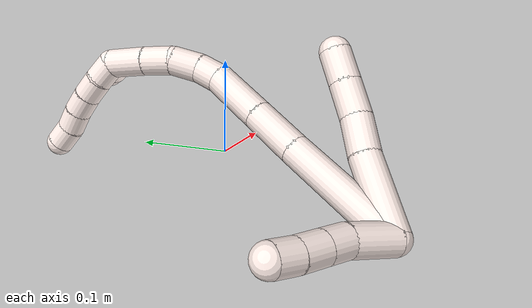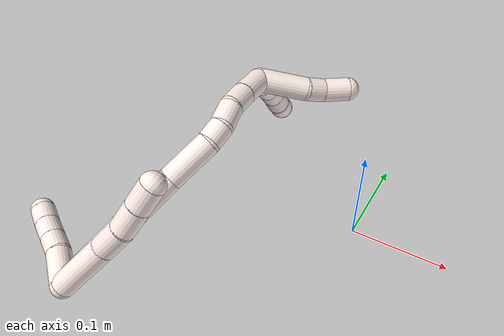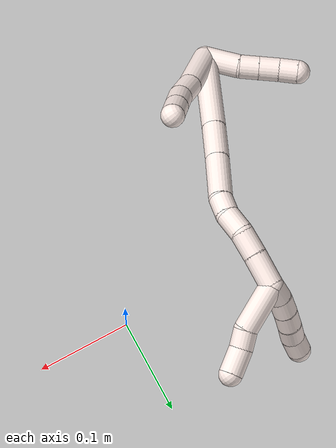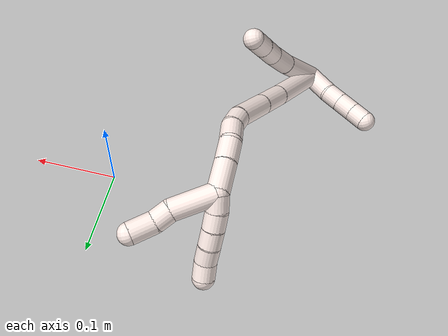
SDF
<sdf version="1.7">
 <world name="default">
  <model name="11">
   <static>0</static>
   <link name="11">
    <collision name="collision-cylinder-e_1_2_8">
     <pose>0.01867 0.025299 -0.002731 -1.67833 0.63299 -0.69953</pose>
     <geometry><cylinder><radius>0.0125</radius><length>0.063121</length></cylinder></geometry>
     <surface>
      <friction><ode><mu>1.16</mu><mu2>1.16</mu2><slip1>0</slip1><slip2>0</slip2></ode></friction>
      <contact><ode><kp>1e+06</kp><kd>1</kd><max_vel>0</max_vel><min_depth>0.001</min_depth></ode></contact>
     </surface>
    </collision>
    <visual name="visual-cylinder-e_1_2_8">
     <pose>0.01867 0.025299 -0.002731 -1.67833 0.63299 -0.69953</pose>
     <geometry><cylinder><radius>0.0125</radius><length>0.063121</length></cylinder></geometry>
     <material><ambient>1 0.933333 0.909804 1</ambient></material>
    </visual>
    <collision name="collision-cylinder-e_2_8_9">
     <pose>0.047883 0.062098 -0.006578 -1.66755 0.739703 -0.807365</pose>
     <geometry><cylinder><radius>0.0125</radius><length>0.031283</length></cylinder></geometry>
     <surface>
      <friction><ode><mu>1.16</mu><mu2>1.16</mu2><slip1>0</slip1><slip2>0</slip2></ode></friction>
      <contact><ode><kp>1e+06</kp><kd>1</kd><max_vel>0</max_vel><min_depth>0.001</min_depth></ode></contact>
     </surface>
    </collision>
    <visual name="visual-cylinder-e_2_8_9">
     <pose>0.047883 0.062098 -0.006578 -1.66755 0.739703 -0.807365</pose>
     <geometry><cylinder><radius>0.0125</radius><length>0.031283</length></cylinder></geometry>
     <material><ambient>1 0.933333 0.909804 1</ambient></material>
    </visual>
    <collision name="collision-cylinder-e_3_9_10">
     <pose>0.067216 0.084904 -0.006305 -1.44852 0.657171 -0.585871</pose>
     <geometry><cylinder><radius>0.0125</radius><length>0.028776</length></cylinder></geometry>
     <surface>
      <friction><ode><mu>1.16</mu><mu2>1.16</mu2><slip1>0</slip1><slip2>0</slip2></ode></friction>
      <contact><ode><kp>1e+06</kp><kd>1</kd><max_vel>0</max_vel><min_depth>0.001</min_depth></ode></contact>
     </surface>
    </collision>
    <visual name="visual-cylinder-e_3_9_10">
     <pose>0.067216 0.084904 -0.006305 -1.44852 0.657171 -0.585871</pose>
     <geometry><cylinder><radius>0.0125</radius><length>0.028776</length></cylinder></geometry>
     <material><ambient>1 0.933333 0.909804 1</ambient></material>
    </visual>
    <collision name="collision-cylinder-e_4_10_6">
     <pose>0.084146 0.106784 -0.003591 -1.44616 0.652389 -0.580238</pose>
     <geometry><cylinder><radius>0.0125</radius><length>0.02682</length></cylinder></geometry>
     <surface>
      <friction><ode><mu>1.16</mu><mu2>1.16</mu2><slip1>0</slip1><slip2>0</slip2></ode></friction>
      <contact><ode><kp>1e+06</kp><kd>1</kd><max_vel>0</max_vel><min_depth>0.001</min_depth></ode></contact>
     </surface>
    </collision>
    <visual name="visual-cylinder-e_4_10_6">
     <pose>0.084146 0.106784 -0.003591 -1.44616 0.652389 -0.580238</pose>
     <geometry><cylinder><radius>0.0125</radius><length>0.02682</length></cylinder></geometry>
     <material><ambient>1 0.933333 0.909804 1</ambient></material>
    </visual>
    <collision name="collision-cylinder-e_1_2_11">
     <pose>-0.010839 0.009652 0.012189 -0.669732 -0.60879 0.217771</pose>
     <geometry><cylinder><radius>0.0125</radius><length>0.037906</length></cylinder></geometry>
     <surface>
      <friction><ode><mu>1.16</mu><mu2>1.16</mu2><slip1>0</slip1><slip2>0</slip2></ode></friction>
      <contact><ode><kp>1e+06</kp><kd>1</kd><max_vel>0</max_vel><min_depth>0.001</min_depth></ode></contact>
     </surface>
    </collision>
    <visual name="visual-cylinder-e_1_2_11">
     <pose>-0.010839 0.009652 0.012189 -0.669732 -0.60879 0.217771</pose>
     <geometry><cylinder><radius>0.0125</radius><length>0.037906</length></cylinder></geometry>
     <material><ambient>1 0.933333 0.909804 1</ambient></material>
    </visual>
    <collision name="collision-cylinder-e_2_11_12">
     <pose>-0.028416 0.022436 0.031424 -0.418439 -0.718256 0.159082</pose>
     <geometry><cylinder><radius>0.0125</radius><length>0.020481</length></cylinder></geometry>
     <surface>
      <friction><ode><mu>1.16</mu><mu2>1.16</mu2><slip1>0</slip1><slip2>0</slip2></ode></friction>
      <contact><ode><kp>1e+06</kp><kd>1</kd><max_vel>0</max_vel><min_depth>0.001</min_depth></ode></contact>
     </surface>
    </collision>
    <visual name="visual-cylinder-e_2_11_12">
     <pose>-0.028416 0.022436 0.031424 -0.418439 -0.718256 0.159082</pose>
     <geometry><cylinder><radius>0.0125</radius><length>0.020481</length></cylinder></geometry>
     <material><ambient>1 0.933333 0.909804 1</ambient></material>
    </visual>
    <collision name="collision-cylinder-e_3_12_13">
     <pose>-0.042237 0.028837 0.045861 -0.416272 -0.719568 0.158551</pose>
     <geometry><cylinder><radius>0.0125</radius><length>0.021492</length></cylinder></geometry>
     <surface>
      <friction><ode><mu>1.16</mu><mu2>1.16</mu2><slip1>0</slip1><slip2>0</slip2></ode></friction>
      <contact><ode><kp>1e+06</kp><kd>1</kd><max_vel>0</max_vel><min_depth>0.001</min_depth></ode></contact>
     </surface>
    </collision>
    <visual name="visual-cylinder-e_3_12_13">
     <pose>-0.042237 0.028837 0.045861 -0.416272 -0.719568 0.158551</pose>
     <geometry><cylinder><radius>0.0125</radius><length>0.021492</length></cylinder></geometry>
     <material><ambient>1 0.933333 0.909804 1</ambient></material>
    </visual>
    <collision name="collision-cylinder-e_4_13_5">
     <pose>-0.055509 0.03585 0.060245 -0.491729 -0.662645 0.172222</pose>
     <geometry><cylinder><radius>0.0125</radius><length>0.020122</length></cylinder></geometry>
     <surface>
      <friction><ode><mu>1.16</mu><mu2>1.16</mu2><slip1>0</slip1><slip2>0</slip2></ode></friction>
      <contact><ode><kp>1e+06</kp><kd>1</kd><max_vel>0</max_vel><min_depth>0.001</min_depth></ode></contact>
     </surface>
    </collision>
    <visual name="visual-cylinder-e_4_13_5">
     <pose>-0.055509 0.03585 0.060245 -0.491729 -0.662645 0.172222</pose>
     <geometry><cylinder><radius>0.0125</radius><length>0.020122</length></cylinder></geometry>
     <material><ambient>1 0.933333 0.909804 1</ambient></material>
    </visual>
    <collision name="collision-cylinder-e_1_2_14">
     <pose>0.006488 0.048244 -0.003581 -1.6449 0.133323 -0.143553</pose>
     <geometry><cylinder><radius>0.0125</radius><length>0.09762</length></cylinder></geometry>
     <surface>
      <friction><ode><mu>1.16</mu><mu2>1.16</mu2><slip1>0</slip1><slip2>0</slip2></ode></friction>
      <contact><ode><kp>1e+06</kp><kd>1</kd><max_vel>0</max_vel><min_depth>0.001</min_depth></ode></contact>
     </surface>
    </collision>
    <visual name="visual-cylinder-e_1_2_14">
     <pose>0.006488 0.048244 -0.003581 -1.6449 0.133323 -0.143553</pose>
     <geometry><cylinder><radius>0.0125</radius><length>0.09762</length></cylinder></geometry>
     <material><ambient>1 0.933333 0.909804 1</ambient></material>
    </visual>
    <collision name="collision-cylinder-e_2_14_15">
     <pose>0.016298 0.11779 -0.008809 -1.64791 0.154208 -0.166528</pose>
     <geometry><cylinder><radius>0.0125</radius><length>0.043243</length></cylinder></geometry>
     <surface>
      <friction><ode><mu>1.16</mu><mu2>1.16</mu2><slip1>0</slip1><slip2>0</slip2></ode></friction>
      <contact><ode><kp>1e+06</kp><kd>1</kd><max_vel>0</max_vel><min_depth>0.001</min_depth></ode></contact>
     </surface>
    </collision>
    <visual name="visual-cylinder-e_2_14_15">
     <pose>0.016298 0.11779 -0.008809 -1.64791 0.154208 -0.166528</pose>
     <geometry><cylinder><radius>0.0125</radius><length>0.043243</length></cylinder></geometry>
     <material><ambient>1 0.933333 0.909804 1</ambient></material>
    </visual>
    <collision name="collision-cylinder-e_3_15_16">
     <pose>0.023573 0.16442 -0.012895 -1.66685 0.154162 -0.169658</pose>
     <geometry><cylinder><radius>0.0125</radius><length>0.051502</length></cylinder></geometry>
     <surface>
      <friction><ode><mu>1.16</mu><mu2>1.16</mu2><slip1>0</slip1><slip2>0</slip2></ode></friction>
      <contact><ode><kp>1e+06</kp><kd>1</kd><max_vel>0</max_vel><min_depth>0.001</min_depth></ode></contact>
     </surface>
    </collision>
    <visual name="visual-cylinder-e_3_15_16">
     <pose>0.023573 0.16442 -0.012895 -1.66685 0.154162 -0.169658</pose>
     <geometry><cylinder><radius>0.0125</radius><length>0.051502</length></cylinder></geometry>
     <material><ambient>1 0.933333 0.909804 1</ambient></material>
    </visual>
    <collision name="collision-cylinder-e_4_16_17">
     <pose>0.026598 0.200246 -0.014913 -1.53056 -0.088191 0.084716</pose>
     <geometry><cylinder><radius>0.0125</radius><length>0.021093</length></cylinder></geometry>
     <surface>
      <friction><ode><mu>1.16</mu><mu2>1.16</mu2><slip1>0</slip1><slip2>0</slip2></ode></friction>
      <contact><ode><kp>1e+06</kp><kd>1</kd><max_vel>0</max_vel><min_depth>0.001</min_depth></ode></contact>
     </surface>
    </collision>
    <visual name="visual-cylinder-e_4_16_17">
     <pose>0.026598 0.200246 -0.014913 -1.53056 -0.088191 0.084716</pose>
     <geometry><cylinder><radius>0.0125</radius><length>0.021093</length></cylinder></geometry>
     <material><ambient>1 0.933333 0.909804 1</ambient></material>
    </visual>
    <collision name="collision-cylinder-e_5_17_18">
     <pose>0.021524 0.222281 -0.011954 -1.35444 -0.33741 0.272213</pose>
     <geometry><cylinder><radius>0.0125</radius><length>0.02504</length></cylinder></geometry>
     <surface>
      <friction><ode><mu>1.16</mu><mu2>1.16</mu2><slip1>0</slip1><slip2>0</slip2></ode></friction>
      <contact><ode><kp>1e+06</kp><kd>1</kd><max_vel>0</max_vel><min_depth>0.001</min_depth></ode></contact>
     </surface>
    </collision>
    <visual name="visual-cylinder-e_5_17_18">
     <pose>0.021524 0.222281 -0.011954 -1.35444 -0.33741 0.272213</pose>
     <geometry><cylinder><radius>0.0125</radius><length>0.02504</length></cylinder></geometry>
     <material><ambient>1 0.933333 0.909804 1</ambient></material>
    </visual>
    <collision name="collision-cylinder-e_6_18_19">
     <pose>0.01055 0.245006 -0.009902 -1.61403 -0.54772 0.570659</pose>
     <geometry><cylinder><radius>0.0125</radius><length>0.026231</length></cylinder></geometry>
     <surface>
      <friction><ode><mu>1.16</mu><mu2>1.16</mu2><slip1>0</slip1><slip2>0</slip2></ode></friction>
      <contact><ode><kp>1e+06</kp><kd>1</kd><max_vel>0</max_vel><min_depth>0.001</min_depth></ode></contact>
     </surface>
    </collision>
    <visual name="visual-cylinder-e_6_18_19">
     <pose>0.01055 0.245006 -0.009902 -1.61403 -0.54772 0.570659</pose>
     <geometry><cylinder><radius>0.0125</radius><length>0.026231</length></cylinder></geometry>
     <material><ambient>1 0.933333 0.909804 1</ambient></material>
    </visual>
    <collision name="collision-cylinder-e_7_19_1">
     <pose>-0.005844 0.270932 -0.011892 -1.6726 -0.573214 0.630929</pose>
     <geometry><cylinder><radius>0.0125</radius><length>0.03527</length></cylinder></geometry>
     <surface>
      <friction><ode><mu>1.16</mu><mu2>1.16</mu2><slip1>0</slip1><slip2>0</slip2></ode></friction>
      <contact><ode><kp>1e+06</kp><kd>1</kd><max_vel>0</max_vel><min_depth>0.001</min_depth></ode></contact>
     </surface>
    </collision>
    <visual name="visual-cylinder-e_7_19_1">
     <pose>-0.005844 0.270932 -0.011892 -1.6726 -0.573214 0.630929</pose>
     <geometry><cylinder><radius>0.0125</radius><length>0.03527</length></cylinder></geometry>
     <material><ambient>1 0.933333 0.909804 1</ambient></material>
    </visual>
    <collision name="collision-cylinder-e_1_1_20">
     <pose>-0.015201 0.298998 -0.035369 -2.59641 0.008075 -0.028885</pose>
     <geometry><cylinder><radius>0.0125</radius><length>0.051396</length></cylinder></geometry>
     <surface>
      <friction><ode><mu>1.16</mu><mu2>1.16</mu2><slip1>0</slip1><slip2>0</slip2></ode></friction>
      <contact><ode><kp>1e+06</kp><kd>1</kd><max_vel>0</max_vel><min_depth>0.001</min_depth></ode></contact>
     </surface>
    </collision>
    <visual name="visual-cylinder-e_1_1_20">
     <pose>-0.015201 0.298998 -0.035369 -2.59641 0.008075 -0.028885</pose>
     <geometry><cylinder><radius>0.0125</radius><length>0.051396</length></cylinder></geometry>
     <material><ambient>1 0.933333 0.909804 1</ambient></material>
    </visual>
    <collision name="collision-cylinder-e_2_20_21">
     <pose>-0.01733 0.318917 -0.06474 -2.41369 -0.231574 0.592678</pose>
     <geometry><cylinder><radius>0.0125</radius><length>0.020364</length></cylinder></geometry>
     <surface>
      <friction><ode><mu>1.16</mu><mu2>1.16</mu2><slip1>0</slip1><slip2>0</slip2></ode></friction>
      <contact><ode><kp>1e+06</kp><kd>1</kd><max_vel>0</max_vel><min_depth>0.001</min_depth></ode></contact>
     </surface>
    </collision>
    <visual name="visual-cylinder-e_2_20_21">
     <pose>-0.01733 0.318917 -0.06474 -2.41369 -0.231574 0.592678</pose>
     <geometry><cylinder><radius>0.0125</radius><length>0.020364</length></cylinder></geometry>
     <material><ambient>1 0.933333 0.909804 1</ambient></material>
    </visual>
    <collision name="collision-cylinder-e_3_21_4">
     <pose>-0.019293 0.335458 -0.082153 -2.35954 0.026463 -0.064172</pose>
     <geometry><cylinder><radius>0.0125</radius><length>0.02824</length></cylinder></geometry>
     <surface>
      <friction><ode><mu>1.16</mu><mu2>1.16</mu2><slip1>0</slip1><slip2>0</slip2></ode></friction>
      <contact><ode><kp>1e+06</kp><kd>1</kd><max_vel>0</max_vel><min_depth>0.001</min_depth></ode></contact>
     </surface>
    </collision>
    <visual name="visual-cylinder-e_3_21_4">
     <pose>-0.019293 0.335458 -0.082153 -2.35954 0.026463 -0.064172</pose>
     <geometry><cylinder><radius>0.0125</radius><length>0.02824</length></cylinder></geometry>
     <material><ambient>1 0.933333 0.909804 1</ambient></material>
    </visual>
    <collision name="collision-cylinder-e_1_1_22">
     <pose>-0.024618 0.288099 -0.016445 -2.46899 -1.17054 2.1708</pose>
     <geometry><cylinder><radius>0.0125</radius><length>0.02</length></cylinder></geometry>
     <surface>
      <friction><ode><mu>1.16</mu><mu2>1.16</mu2><slip1>0</slip1><slip2>0</slip2></ode></friction>
      <contact><ode><kp>1e+06</kp><kd>1</kd><max_vel>0</max_vel><min_depth>0.001</min_depth></ode></contact>
     </surface>
    </collision>
    <visual name="visual-cylinder-e_1_1_22">
     <pose>-0.024618 0.288099 -0.016445 -2.46899 -1.17054 2.1708</pose>
     <geometry><cylinder><radius>0.0125</radius><length>0.02</length></cylinder></geometry>
     <material><ambient>1 0.933333 0.909804 1</ambient></material>
    </visual>
    <collision name="collision-cylinder-e_2_22_23">
     <pose>-0.042385 0.293308 -0.023857 -2.5742 -1.02696 2.18727</pose>
     <geometry><cylinder><radius>0.0125</radius><length>0.02</length></cylinder></geometry>
     <surface>
      <friction><ode><mu>1.16</mu><mu2>1.16</mu2><slip1>0</slip1><slip2>0</slip2></ode></friction>
      <contact><ode><kp>1e+06</kp><kd>1</kd><max_vel>0</max_vel><min_depth>0.001</min_depth></ode></contact>
     </surface>
    </collision>
    <visual name="visual-cylinder-e_2_22_23">
     <pose>-0.042385 0.293308 -0.023857 -2.5742 -1.02696 2.18727</pose>
     <geometry><cylinder><radius>0.0125</radius><length>0.02</length></cylinder></geometry>
     <material><ambient>1 0.933333 0.909804 1</ambient></material>
    </visual>
    <collision name="collision-cylinder-e_3_23_24">
     <pose>-0.059384 0.298345 -0.033083 -2.70712 -1.00503 2.37779</pose>
     <geometry><cylinder><radius>0.0125</radius><length>0.02</length></cylinder></geometry>
     <surface>
      <friction><ode><mu>1.16</mu><mu2>1.16</mu2><slip1>0</slip1><slip2>0</slip2></ode></friction>
      <contact><ode><kp>1e+06</kp><kd>1</kd><max_vel>0</max_vel><min_depth>0.001</min_depth></ode></contact>
     </surface>
    </collision>
    <visual name="visual-cylinder-e_3_23_24">
     <pose>-0.059384 0.298345 -0.033083 -2.70712 -1.00503 2.37779</pose>
     <geometry><cylinder><radius>0.0125</radius><length>0.02</length></cylinder></geometry>
     <material><ambient>1 0.933333 0.909804 1</ambient></material>
    </visual>
    <collision name="collision-cylinder-e_4_24_25">
     <pose>-0.076241 0.301809 -0.043211 -2.91627 -1.00014 2.73323</pose>
     <geometry><cylinder><radius>0.0125</radius><length>0.02</length></cylinder></geometry>
     <surface>
      <friction><ode><mu>1.16</mu><mu2>1.16</mu2><slip1>0</slip1><slip2>0</slip2></ode></friction>
      <contact><ode><kp>1e+06</kp><kd>1</kd><max_vel>0</max_vel><min_depth>0.001</min_depth></ode></contact>
     </surface>
    </collision>
    <visual name="visual-cylinder-e_4_24_25">
     <pose>-0.076241 0.301809 -0.043211 -2.91627 -1.00014 2.73323</pose>
     <geometry><cylinder><radius>0.0125</radius><length>0.02</length></cylinder></geometry>
     <material><ambient>1 0.933333 0.909804 1</ambient></material>
    </visual>
    <collision name="collision-cylinder-e_5_25_3">
     <pose>-0.093539 0.305505 -0.052336 -2.56864 -1.09356 2.24012</pose>
     <geometry><cylinder><radius>0.0125</radius><length>0.02</length></cylinder></geometry>
     <surface>
      <friction><ode><mu>1.16</mu><mu2>1.16</mu2><slip1>0</slip1><slip2>0</slip2></ode></friction>
      <contact><ode><kp>1e+06</kp><kd>1</kd><max_vel>0</max_vel><min_depth>0.001</min_depth></ode></contact>
     </surface>
    </collision>
    <visual name="visual-cylinder-e_5_25_3">
     <pose>-0.093539 0.305505 -0.052336 -2.56864 -1.09356 2.24012</pose>
     <geometry><cylinder><radius>0.0125</radius><length>0.02</length></cylinder></geometry>
     <material><ambient>1 0.933333 0.909804 1</ambient></material>
    </visual>
    <collision name="collision-sphere-3">
     <pose>-0.102422 0.307996 -0.056195 0 -0 0</pose>
     <geometry><sphere><radius>0.0125</radius></sphere></geometry>
     <surface>
      <friction><ode><mu>1.16</mu><mu2>1.16</mu2><slip1>0</slip1><slip2>0</slip2></ode></friction>
      <contact><ode><kp>1e+06</kp><kd>1</kd><max_vel>0</max_vel><min_depth>0.001</min_depth></ode></contact>
     </surface>
    </collision>
    <visual name="visual-sphere-3">
     <pose>-0.102422 0.307996 -0.056195 0 -0 0</pose>
     <geometry><sphere><radius>0.0125</radius></sphere></geometry>
     <material><ambient>1 0.933333 0.909804 1</ambient></material>
    </visual>
    <collision name="collision-sphere-25">
     <pose>-0.084657 0.303015 -0.048476 0 -0 0</pose>
     <geometry><sphere><radius>0.0125</radius></sphere></geometry>
     <surface>
      <friction><ode><mu>1.16</mu><mu2>1.16</mu2><slip1>0</slip1><slip2>0</slip2></ode></friction>
      <contact><ode><kp>1e+06</kp><kd>1</kd><max_vel>0</max_vel><min_depth>0.001</min_depth></ode></contact>
     </surface>
    </collision>
    <visual name="visual-sphere-25">
     <pose>-0.084657 0.303015 -0.048476 0 -0 0</pose>
     <geometry><sphere><radius>0.0125</radius></sphere></geometry>
     <material><ambient>1 0.933333 0.909804 1</ambient></material>
    </visual>
    <collision name="collision-sphere-24">
     <pose>-0.067826 0.300602 -0.037945 0 -0 0</pose>
     <geometry><sphere><radius>0.0125</radius></sphere></geometry>
     <surface>
      <friction><ode><mu>1.16</mu><mu2>1.16</mu2><slip1>0</slip1><slip2>0</slip2></ode></friction>
      <contact><ode><kp>1e+06</kp><kd>1</kd><max_vel>0</max_vel><min_depth>0.001</min_depth></ode></contact>
     </surface>
    </collision>
    <visual name="visual-sphere-24">
     <pose>-0.067826 0.300602 -0.037945 0 -0 0</pose>
     <geometry><sphere><radius>0.0125</radius></sphere></geometry>
     <material><ambient>1 0.933333 0.909804 1</ambient></material>
    </visual>
    <collision name="collision-sphere-23">
     <pose>-0.050942 0.296089 -0.02822 0 -0 0</pose>
     <geometry><sphere><radius>0.0125</radius></sphere></geometry>
     <surface>
      <friction><ode><mu>1.16</mu><mu2>1.16</mu2><slip1>0</slip1><slip2>0</slip2></ode></friction>
      <contact><ode><kp>1e+06</kp><kd>1</kd><max_vel>0</max_vel><min_depth>0.001</min_depth></ode></contact>
     </surface>
    </collision>
    <visual name="visual-sphere-23">
     <pose>-0.050942 0.296089 -0.02822 0 -0 0</pose>
     <geometry><sphere><radius>0.0125</radius></sphere></geometry>
     <material><ambient>1 0.933333 0.909804 1</ambient></material>
    </visual>
    <collision name="collision-sphere-22">
     <pose>-0.033827 0.290527 -0.019493 0 -0 0</pose>
     <geometry><sphere><radius>0.0125</radius></sphere></geometry>
     <surface>
      <friction><ode><mu>1.16</mu><mu2>1.16</mu2><slip1>0</slip1><slip2>0</slip2></ode></friction>
      <contact><ode><kp>1e+06</kp><kd>1</kd><max_vel>0</max_vel><min_depth>0.001</min_depth></ode></contact>
     </surface>
    </collision>
    <visual name="visual-sphere-22">
     <pose>-0.033827 0.290527 -0.019493 0 -0 0</pose>
     <geometry><sphere><radius>0.0125</radius></sphere></geometry>
     <material><ambient>1 0.933333 0.909804 1</ambient></material>
    </visual>
    <collision name="collision-sphere-4">
     <pose>-0.01892 0.345405 -0.092167 0 -0 0</pose>
     <geometry><sphere><radius>0.0125</radius></sphere></geometry>
     <surface>
      <friction><ode><mu>1.16</mu><mu2>1.16</mu2><slip1>0</slip1><slip2>0</slip2></ode></friction>
      <contact><ode><kp>1e+06</kp><kd>1</kd><max_vel>0</max_vel><min_depth>0.001</min_depth></ode></contact>
     </surface>
    </collision>
    <visual name="visual-sphere-4">
     <pose>-0.01892 0.345405 -0.092167 0 -0 0</pose>
     <geometry><sphere><radius>0.0125</radius></sphere></geometry>
     <material><ambient>1 0.933333 0.909804 1</ambient></material>
    </visual>
    <collision name="collision-sphere-21">
     <pose>-0.019667 0.325511 -0.072139 0 -0 0</pose>
     <geometry><sphere><radius>0.0125</radius></sphere></geometry>
     <surface>
      <friction><ode><mu>1.16</mu><mu2>1.16</mu2><slip1>0</slip1><slip2>0</slip2></ode></friction>
      <contact><ode><kp>1e+06</kp><kd>1</kd><max_vel>0</max_vel><min_depth>0.001</min_depth></ode></contact>
     </surface>
    </collision>
    <visual name="visual-sphere-21">
     <pose>-0.019667 0.325511 -0.072139 0 -0 0</pose>
     <geometry><sphere><radius>0.0125</radius></sphere></geometry>
     <material><ambient>1 0.933333 0.909804 1</ambient></material>
    </visual>
    <collision name="collision-sphere-20">
     <pose>-0.014993 0.312324 -0.057341 0 -0 0</pose>
     <geometry><sphere><radius>0.0125</radius></sphere></geometry>
     <surface>
      <friction><ode><mu>1.16</mu><mu2>1.16</mu2><slip1>0</slip1><slip2>0</slip2></ode></friction>
      <contact><ode><kp>1e+06</kp><kd>1</kd><max_vel>0</max_vel><min_depth>0.001</min_depth></ode></contact>
     </surface>
    </collision>
    <visual name="visual-sphere-20">
     <pose>-0.014993 0.312324 -0.057341 0 -0 0</pose>
     <geometry><sphere><radius>0.0125</radius></sphere></geometry>
     <material><ambient>1 0.933333 0.909804 1</ambient></material>
    </visual>
    <collision name="collision-sphere-11">
     <pose>-0.021677 0.019303 0.024379 0 -0 0</pose>
     <geometry><sphere><radius>0.0125</radius></sphere></geometry>
     <surface>
      <friction><ode><mu>1.16</mu><mu2>1.16</mu2><slip1>0</slip1><slip2>0</slip2></ode></friction>
      <contact><ode><kp>1e+06</kp><kd>1</kd><max_vel>0</max_vel><min_depth>0.001</min_depth></ode></contact>
     </surface>
    </collision>
    <visual name="visual-sphere-11">
     <pose>-0.021677 0.019303 0.024379 0 -0 0</pose>
     <geometry><sphere><radius>0.0125</radius></sphere></geometry>
     <material><ambient>1 0.933333 0.909804 1</ambient></material>
    </visual>
    <collision name="collision-sphere-6">
     <pose>0.092287 0.117357 -0.002266 0 -0 0</pose>
     <geometry><sphere><radius>0.0125</radius></sphere></geometry>
     <surface>
      <friction><ode><mu>1.16</mu><mu2>1.16</mu2><slip1>0</slip1><slip2>0</slip2></ode></friction>
      <contact><ode><kp>1e+06</kp><kd>1</kd><max_vel>0</max_vel><min_depth>0.001</min_depth></ode></contact>
     </surface>
    </collision>
    <visual name="visual-sphere-6">
     <pose>0.092287 0.117357 -0.002266 0 -0 0</pose>
     <geometry><sphere><radius>0.0125</radius></sphere></geometry>
     <material><ambient>1 0.933333 0.909804 1</ambient></material>
    </visual>
    <collision name="collision-sphere-10">
     <pose>0.076005 0.096211 -0.004916 0 -0 0</pose>
     <geometry><sphere><radius>0.0125</radius></sphere></geometry>
     <surface>
      <friction><ode><mu>1.16</mu><mu2>1.16</mu2><slip1>0</slip1><slip2>0</slip2></ode></friction>
      <contact><ode><kp>1e+06</kp><kd>1</kd><max_vel>0</max_vel><min_depth>0.001</min_depth></ode></contact>
     </surface>
    </collision>
    <visual name="visual-sphere-10">
     <pose>0.076005 0.096211 -0.004916 0 -0 0</pose>
     <geometry><sphere><radius>0.0125</radius></sphere></geometry>
     <material><ambient>1 0.933333 0.909804 1</ambient></material>
    </visual>
    <collision name="collision-sphere-9">
     <pose>0.058427 0.073598 -0.007694 0 -0 0</pose>
     <geometry><sphere><radius>0.0125</radius></sphere></geometry>
     <surface>
      <friction><ode><mu>1.16</mu><mu2>1.16</mu2><slip1>0</slip1><slip2>0</slip2></ode></friction>
      <contact><ode><kp>1e+06</kp><kd>1</kd><max_vel>0</max_vel><min_depth>0.001</min_depth></ode></contact>
     </surface>
    </collision>
    <visual name="visual-sphere-9">
     <pose>0.058427 0.073598 -0.007694 0 -0 0</pose>
     <geometry><sphere><radius>0.0125</radius></sphere></geometry>
     <material><ambient>1 0.933333 0.909804 1</ambient></material>
    </visual>
    <collision name="collision-sphere-2">
     <geometry><sphere><radius>0.0125</radius></sphere></geometry>
     <surface>
      <friction><ode><mu>1.16</mu><mu2>1.16</mu2><slip1>0</slip1><slip2>0</slip2></ode></friction>
      <contact><ode><kp>1e+06</kp><kd>1</kd><max_vel>0</max_vel><min_depth>0.001</min_depth></ode></contact>
     </surface>
    </collision>
    <visual name="visual-sphere-2">
     <geometry><sphere><radius>0.0125</radius></sphere></geometry>
     <material><ambient>1 0.933333 0.909804 1</ambient></material>
    </visual>
    <collision name="collision-sphere-19">
     <pose>0.00372 0.256192 -0.010386 0 -0 0</pose>
     <geometry><sphere><radius>0.0125</radius></sphere></geometry>
     <surface>
      <friction><ode><mu>1.16</mu><mu2>1.16</mu2><slip1>0</slip1><slip2>0</slip2></ode></friction>
      <contact><ode><kp>1e+06</kp><kd>1</kd><max_vel>0</max_vel><min_depth>0.001</min_depth></ode></contact>
     </surface>
    </collision>
    <visual name="visual-sphere-19">
     <pose>0.00372 0.256192 -0.010386 0 -0 0</pose>
     <geometry><sphere><radius>0.0125</radius></sphere></geometry>
     <material><ambient>1 0.933333 0.909804 1</ambient></material>
    </visual>
    <collision name="collision-sphere-8">
     <pose>0.03734 0.050598 -0.005462 0 -0 0</pose>
     <geometry><sphere><radius>0.0125</radius></sphere></geometry>
     <surface>
      <friction><ode><mu>1.16</mu><mu2>1.16</mu2><slip1>0</slip1><slip2>0</slip2></ode></friction>
      <contact><ode><kp>1e+06</kp><kd>1</kd><max_vel>0</max_vel><min_depth>0.001</min_depth></ode></contact>
     </surface>
    </collision>
    <visual name="visual-sphere-8">
     <pose>0.03734 0.050598 -0.005462 0 -0 0</pose>
     <geometry><sphere><radius>0.0125</radius></sphere></geometry>
     <material><ambient>1 0.933333 0.909804 1</ambient></material>
    </visual>
    <collision name="collision-sphere-12">
     <pose>-0.035155 0.02557 0.038469 0 -0 0</pose>
     <geometry><sphere><radius>0.0125</radius></sphere></geometry>
     <surface>
      <friction><ode><mu>1.16</mu><mu2>1.16</mu2><slip1>0</slip1><slip2>0</slip2></ode></friction>
      <contact><ode><kp>1e+06</kp><kd>1</kd><max_vel>0</max_vel><min_depth>0.001</min_depth></ode></contact>
     </surface>
    </collision>
    <visual name="visual-sphere-12">
     <pose>-0.035155 0.02557 0.038469 0 -0 0</pose>
     <geometry><sphere><radius>0.0125</radius></sphere></geometry>
     <material><ambient>1 0.933333 0.909804 1</ambient></material>
    </visual>
    <collision name="collision-sphere-13">
     <pose>-0.04932 0.032105 0.053253 0 -0 0</pose>
     <geometry><sphere><radius>0.0125</radius></sphere></geometry>
     <surface>
      <friction><ode><mu>1.16</mu><mu2>1.16</mu2><slip1>0</slip1><slip2>0</slip2></ode></friction>
      <contact><ode><kp>1e+06</kp><kd>1</kd><max_vel>0</max_vel><min_depth>0.001</min_depth></ode></contact>
     </surface>
    </collision>
    <visual name="visual-sphere-13">
     <pose>-0.04932 0.032105 0.053253 0 -0 0</pose>
     <geometry><sphere><radius>0.0125</radius></sphere></geometry>
     <material><ambient>1 0.933333 0.909804 1</ambient></material>
    </visual>
    <collision name="collision-sphere-5">
     <pose>-0.061699 0.039595 0.067236 0 -0 0</pose>
     <geometry><sphere><radius>0.0125</radius></sphere></geometry>
     <surface>
      <friction><ode><mu>1.16</mu><mu2>1.16</mu2><slip1>0</slip1><slip2>0</slip2></ode></friction>
      <contact><ode><kp>1e+06</kp><kd>1</kd><max_vel>0</max_vel><min_depth>0.001</min_depth></ode></contact>
     </surface>
    </collision>
    <visual name="visual-sphere-5">
     <pose>-0.061699 0.039595 0.067236 0 -0 0</pose>
     <geometry><sphere><radius>0.0125</radius></sphere></geometry>
     <material><ambient>1 0.933333 0.909804 1</ambient></material>
    </visual>
    <collision name="collision-sphere-14">
     <pose>0.012977 0.096489 -0.007163 0 -0 0</pose>
     <geometry><sphere><radius>0.0125</radius></sphere></geometry>
     <surface>
      <friction><ode><mu>1.16</mu><mu2>1.16</mu2><slip1>0</slip1><slip2>0</slip2></ode></friction>
      <contact><ode><kp>1e+06</kp><kd>1</kd><max_vel>0</max_vel><min_depth>0.001</min_depth></ode></contact>
     </surface>
    </collision>
    <visual name="visual-sphere-14">
     <pose>0.012977 0.096489 -0.007163 0 -0 0</pose>
     <geometry><sphere><radius>0.0125</radius></sphere></geometry>
     <material><ambient>1 0.933333 0.909804 1</ambient></material>
    </visual>
    <collision name="collision-sphere-15">
     <pose>0.019619 0.139092 -0.010455 0 -0 0</pose>
     <geometry><sphere><radius>0.0125</radius></sphere></geometry>
     <surface>
      <friction><ode><mu>1.16</mu><mu2>1.16</mu2><slip1>0</slip1><slip2>0</slip2></ode></friction>
      <contact><ode><kp>1e+06</kp><kd>1</kd><max_vel>0</max_vel><min_depth>0.001</min_depth></ode></contact>
     </surface>
    </collision>
    <visual name="visual-sphere-15">
     <pose>0.019619 0.139092 -0.010455 0 -0 0</pose>
     <geometry><sphere><radius>0.0125</radius></sphere></geometry>
     <material><ambient>1 0.933333 0.909804 1</ambient></material>
    </visual>
    <collision name="collision-sphere-16">
     <pose>0.027527 0.189749 -0.015335 0 -0 0</pose>
     <geometry><sphere><radius>0.0125</radius></sphere></geometry>
     <surface>
      <friction><ode><mu>1.16</mu><mu2>1.16</mu2><slip1>0</slip1><slip2>0</slip2></ode></friction>
      <contact><ode><kp>1e+06</kp><kd>1</kd><max_vel>0</max_vel><min_depth>0.001</min_depth></ode></contact>
     </surface>
    </collision>
    <visual name="visual-sphere-16">
     <pose>0.027527 0.189749 -0.015335 0 -0 0</pose>
     <geometry><sphere><radius>0.0125</radius></sphere></geometry>
     <material><ambient>1 0.933333 0.909804 1</ambient></material>
    </visual>
    <collision name="collision-sphere-17">
     <pose>0.025669 0.210743 -0.01449 0 -0 0</pose>
     <geometry><sphere><radius>0.0125</radius></sphere></geometry>
     <surface>
      <friction><ode><mu>1.16</mu><mu2>1.16</mu2><slip1>0</slip1><slip2>0</slip2></ode></friction>
      <contact><ode><kp>1e+06</kp><kd>1</kd><max_vel>0</max_vel><min_depth>0.001</min_depth></ode></contact>
     </surface>
    </collision>
    <visual name="visual-sphere-17">
     <pose>0.025669 0.210743 -0.01449 0 -0 0</pose>
     <geometry><sphere><radius>0.0125</radius></sphere></geometry>
     <material><ambient>1 0.933333 0.909804 1</ambient></material>
    </visual>
    <collision name="collision-sphere-18">
     <pose>0.01738 0.233819 -0.009418 0 -0 0</pose>
     <geometry><sphere><radius>0.0125</radius></sphere></geometry>
     <surface>
      <friction><ode><mu>1.16</mu><mu2>1.16</mu2><slip1>0</slip1><slip2>0</slip2></ode></friction>
      <contact><ode><kp>1e+06</kp><kd>1</kd><max_vel>0</max_vel><min_depth>0.001</min_depth></ode></contact>
     </surface>
    </collision>
    <visual name="visual-sphere-18">
     <pose>0.01738 0.233819 -0.009418 0 -0 0</pose>
     <geometry><sphere><radius>0.0125</radius></sphere></geometry>
     <material><ambient>1 0.933333 0.909804 1</ambient></material>
    </visual>
    <collision name="collision-sphere-1">
     <pose>-0.015408 0.285672 -0.013397 0 -0 0</pose>
     <geometry><sphere><radius>0.0125</radius></sphere></geometry>
     <surface>
      <friction><ode><mu>1.16</mu><mu2>1.16</mu2><slip1>0</slip1><slip2>0</slip2></ode></friction>
      <contact><ode><kp>1e+06</kp><kd>1</kd><max_vel>0</max_vel><min_depth>0.001</min_depth></ode></contact>
     </surface>
    </collision>
    <visual name="visual-sphere-1">
     <pose>-0.015408 0.285672 -0.013397 0 -0 0</pose>
     <geometry><sphere><radius>0.0125</radius></sphere></geometry>
     <material><ambient>1 0.933333 0.909804 1</ambient></material>
    </visual>
    <inertial>
     <pose>-4e-05 0.154844 -0.011833 0 -0 0</pose>
     <mass>0.75</mass>
     <inertia>
      <ixx>0.000125</ixx>
      <ixy>0</ixy>
      <ixz>0</ixz>
      <iyy>2.7e-05</iyy>
      <iyz>0</iyz>
      <izz>-0.000176</izz>
     </inertia>
    </inertial>
   </link>
   <pose>-0.206498 -0.210547 0.013104 0.651908 -0.840612 -0.755544</pose>
  </model>
 </world>
</sdf>
